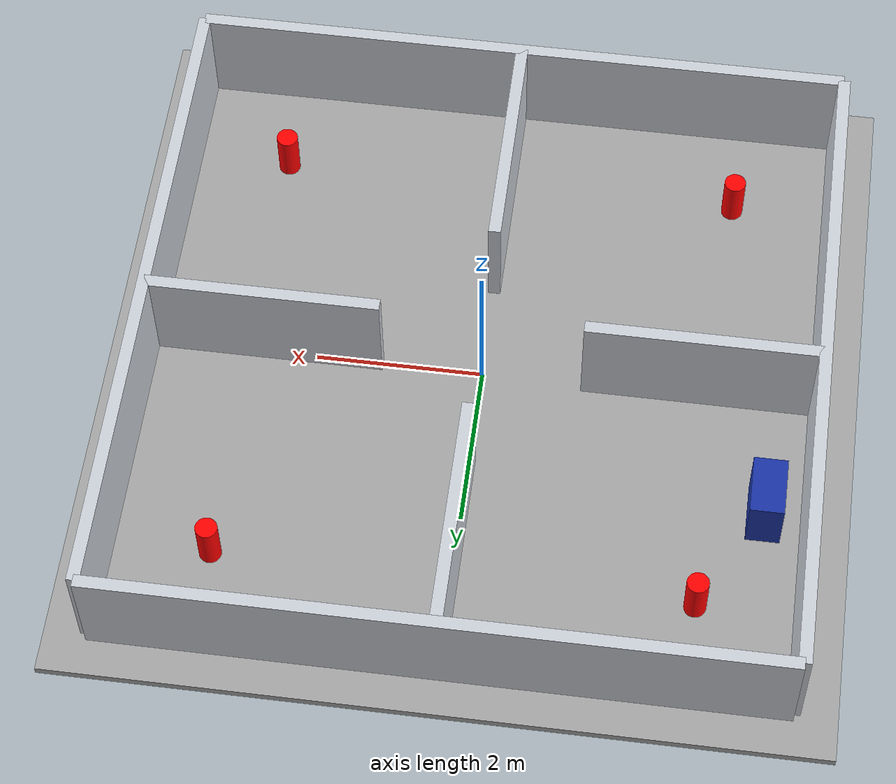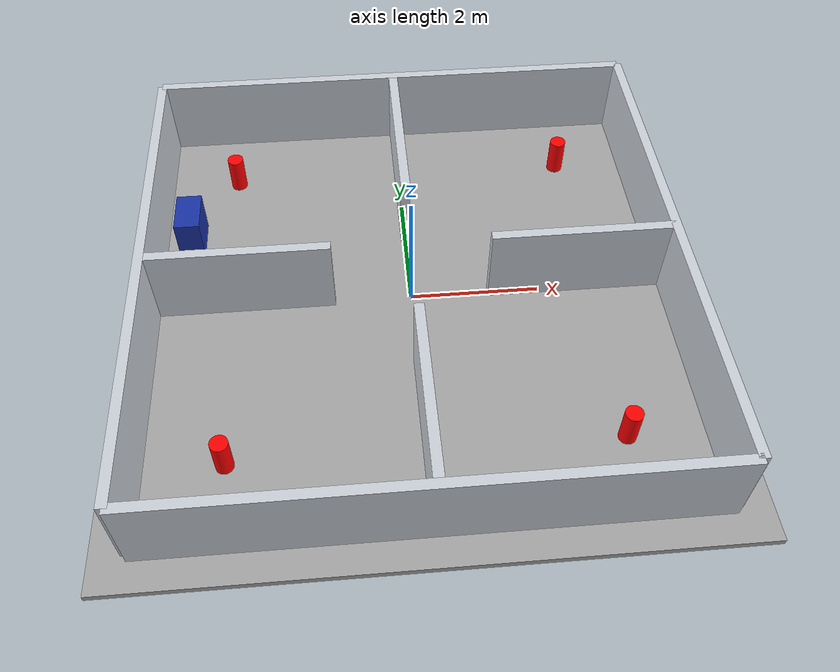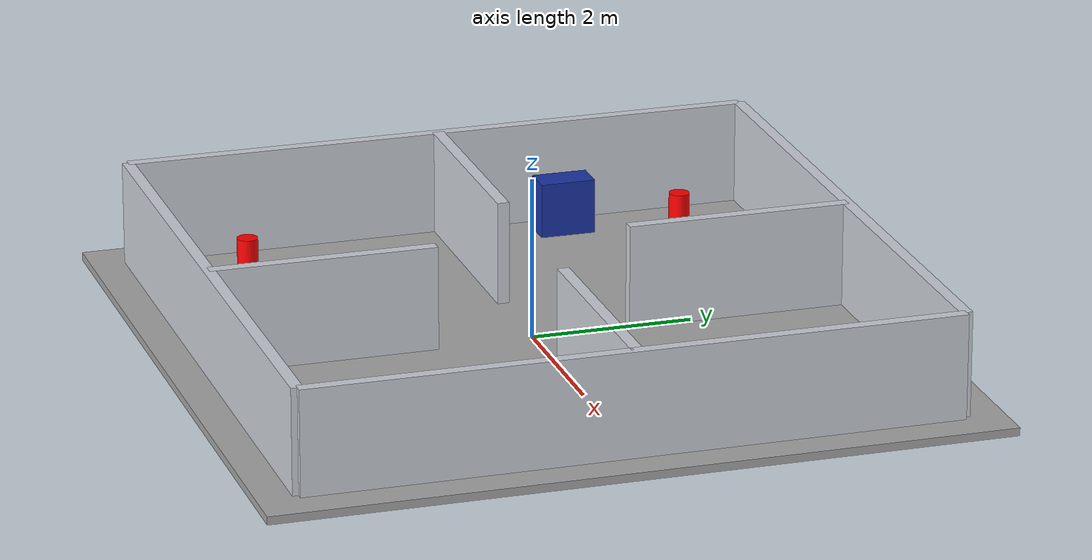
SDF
<sdf version="1.6"><world name="rescue_building"><gravity>0 0 -9.81</gravity><physics name="default" type="ode"><max_step_size>0.004</max_step_size><real_time_update_rate>250</real_time_update_rate></physics><scene><ambient>.6 .6 .6 1</ambient><shadows>false</shadows></scene><light name="sun" type="directional"><pose>0 0 10 0 0 0</pose><diffuse>.8 .8 .8 1</diffuse><direction>-.3 -.2 -1</direction></light><model name="floor"><static>true</static><pose>0 0 -0.05 0 0 0</pose><link name="body"><collision name="collision"><geometry><box><size>9 9 .1</size></box></geometry></collision><visual name="visual"><geometry><box><size>9 9 .1</size></box></geometry><material><ambient>.65 .65 .65 1</ambient><diffuse>.65 .65 .65 1</diffuse></material></visual></link></model><model name="wall_0"><static>true</static><pose>-4 0 0.65 0 0 0</pose><link name="body"><collision name="collision"><geometry><box><size>0.15 8 1.3</size></box></geometry></collision><visual name="visual"><geometry><box><size>0.15 8 1.3</size></box></geometry><material><ambient>.8 .82 .85 1</ambient><diffuse>.8 .82 .85 1</diffuse></material></visual></link></model><model name="wall_1"><static>true</static><pose>4 0 0.65 0 0 0</pose><link name="body"><collision name="collision"><geometry><box><size>0.15 8 1.3</size></box></geometry></collision><visual name="visual"><geometry><box><size>0.15 8 1.3</size></box></geometry><material><ambient>.8 .82 .85 1</ambient><diffuse>.8 .82 .85 1</diffuse></material></visual></link></model><model name="wall_2"><static>true</static><pose>0 -4 0.65 0 0 0</pose><link name="body"><collision name="collision"><geometry><box><size>8 0.15 1.3</size></box></geometry></collision><visual name="visual"><geometry><box><size>8 0.15 1.3</size></box></geometry><material><ambient>.8 .82 .85 1</ambient><diffuse>.8 .82 .85 1</diffuse></material></visual></link></model><model name="wall_3"><static>true</static><pose>0 4 0.65 0 0 0</pose><link name="body"><collision name="collision"><geometry><box><size>8 0.15 1.3</size></box></geometry></collision><visual name="visual"><geometry><box><size>8 0.15 1.3</size></box></geometry><material><ambient>.8 .82 .85 1</ambient><diffuse>.8 .82 .85 1</diffuse></material></visual></link></model><model name="wall_4"><static>true</static><pose>0 2.6 0.65 0 0 0</pose><link name="body"><collision name="collision"><geometry><box><size>0.15 2.8 1.3</size></box></geometry></collision><visual name="visual"><geometry><box><size>0.15 2.8 1.3</size></box></geometry><material><ambient>.8 .82 .85 1</ambient><diffuse>.8 .82 .85 1</diffuse></material></visual></link></model><model name="wall_5"><static>true</static><pose>0 -2.6 0.65 0 0 0</pose><link name="body"><collision name="collision"><geometry><box><size>0.15 2.8 1.3</size></box></geometry></collision><visual name="visual"><geometry><box><size>0.15 2.8 1.3</size></box></geometry><material><ambient>.8 .82 .85 1</ambient><diffuse>.8 .82 .85 1</diffuse></material></visual></link></model><model name="wall_6"><static>true</static><pose>2.6 0 0.65 0 0 0</pose><link name="body"><collision name="collision"><geometry><box><size>2.8 0.15 1.3</size></box></geometry></collision><visual name="visual"><geometry><box><size>2.8 0.15 1.3</size></box></geometry><material><ambient>.8 .82 .85 1</ambient><diffuse>.8 .82 .85 1</diffuse></material></visual></link></model><model name="wall_7"><static>true</static><pose>-2.6 0 0.65 0 0 0</pose><link name="body"><collision name="collision"><geometry><box><size>2.8 0.15 1.3</size></box></geometry></collision><visual name="visual"><geometry><box><size>2.8 0.15 1.3</size></box></geometry><material><ambient>.8 .82 .85 1</ambient><diffuse>.8 .82 .85 1</diffuse></material></visual></link></model><model name="victim_1"><static>true</static><pose>2.8 2.8 0.3 0 0 0</pose><link name="body"><collision name="collision"><geometry><cylinder><radius>.13</radius><length>.6</length></cylinder></geometry></collision><visual name="visual"><geometry><cylinder><radius>.13</radius><length>.6</length></cylinder></geometry><material><ambient>1 0 0 1</ambient><diffuse>1 0 0 1</diffuse></material></visual></link></model><model name="victim_2"><static>true</static><pose>-2.8 2.8 0.3 0 0 0</pose><link name="body"><collision name="collision"><geometry><cylinder><radius>.13</radius><length>.6</length></cylinder></geometry></collision><visual name="visual"><geometry><cylinder><radius>.13</radius><length>.6</length></cylinder></geometry><material><ambient>1 0 0 1</ambient><diffuse>1 0 0 1</diffuse></material></visual></link></model><model name="victim_3"><static>true</static><pose>-2.8 -2.8 0.3 0 0 0</pose><link name="body"><collision name="collision"><geometry><cylinder><radius>.13</radius><length>.6</length></cylinder></geometry></collision><visual name="visual"><geometry><cylinder><radius>.13</radius><length>.6</length></cylinder></geometry><material><ambient>1 0 0 1</ambient><diffuse>1 0 0 1</diffuse></material></visual></link></model><model name="victim_4"><static>true</static><pose>2.8 -2.8 0.3 0 0 0</pose><link name="body"><collision name="collision"><geometry><cylinder><radius>.13</radius><length>.6</length></cylinder></geometry></collision><visual name="visual"><geometry><cylinder><radius>.13</radius><length>.6</length></cylinder></geometry><material><ambient>1 0 0 1</ambient><diffuse>1 0 0 1</diffuse></material></visual></link></model><model name="cabinet"><static>true</static><pose>-3.5 1.5 0.35 0 0 0</pose><link name="body"><collision name="collision"><geometry><box><size>.4 .7 .7</size></box></geometry></collision><visual name="visual"><geometry><box><size>.4 .7 .7</size></box></geometry><material><ambient>.1 .2 .65 1</ambient><diffuse>.1 .2 .65 1</diffuse></material></visual></link></model></world></sdf>
